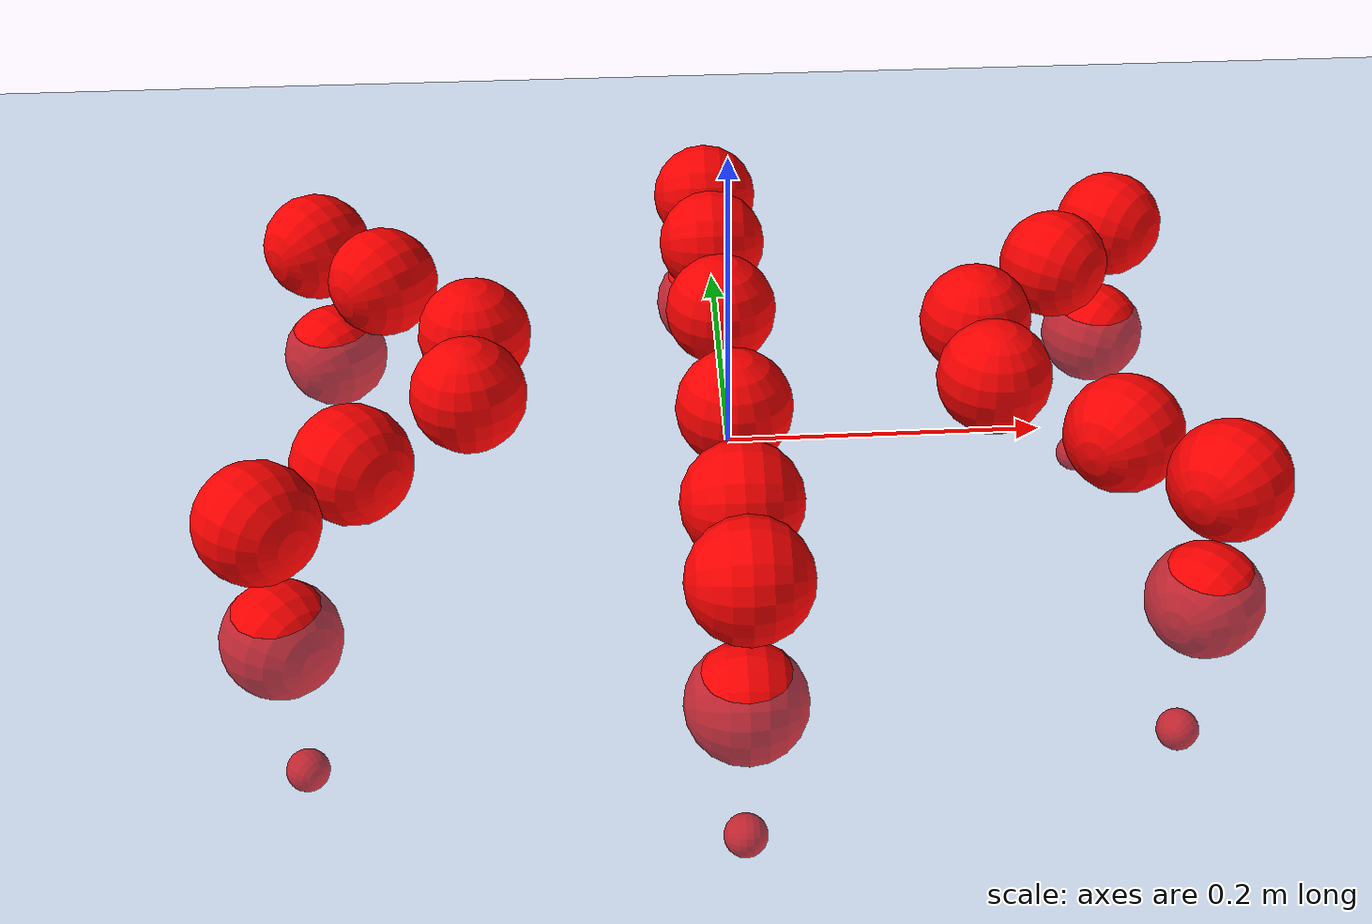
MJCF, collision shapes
<mujoco model="Golem">
  <compiler angle="radian" assetdir="assets" balanceinertia="true" inertiafromgeom="false"/>

  <option timestep="0.005" density="1.2" viscosity="2e-05"/>

  <size nkey="1"/>

  <visual>
    <quality shadowsize="8192"/>
    <map shadowclip="0.5"/>
  </visual>

  <default>
    <default class="/">
      <joint armature="0.01" damping="0.01" frictionloss="0.01"/>
      <geom contype="0" conaffinity="0" group="1" solref="-1000 -80"/>
      <site size="0.01 0.005 0.005" group="5"/>
      <general forcelimited="true" biastype="affine" gainprm="25" biasprm="0 -25 -0.5"/>
      <default class="visual">
        <geom type="mesh" group="2"/>
      </default>
      <default class="collision">
        <geom group="3"/>
      </default>
      <default class="foot">
        <geom size="0.01 0 0" condim="6" group="4" priority="1" solimp="0.015 1 0.01"/>
      </default>
      <default class="reward_collision_sphere">
        <geom group="5" rgba="1 0 0 1"/>
      </default>
    </default>
  </default>

  <asset>
    <texture type="skybox" colorspace="auto" name="//unnamed_texture_0" builtin="gradient" rgb1="0.95 0.95 0.95" rgb2="0.95 0.95 0.95" width="100" height="600"/>
    <texture type="2d" colorspace="auto" name="texplane" builtin="checker" rgb1="0.345 0.575 0.748" rgb2="0.345 0.575 0.748" markrgb="1 1 1" width="512" height="512"/>
    <material name="MatPlane" class="/" texture="texplane" texuniform="true" texrepeat="2 2" specular="0.9"/>
    <mesh name="body" class="/" file="body.stl" scale="0.001 0.001 0.001"/>
    <mesh name="coxa" class="/" file="coxa.stl" scale="0.001 0.001 0.001"/>
    <mesh name="femur" class="/" file="femur.stl" scale="0.001 0.001 0.001"/>
    <mesh name="tibia" class="/" file="tibia.stl" scale="0.001 0.001 0.001"/>
    <mesh name="tarsus" class="/" file="tarsus.stl" scale="0.001 0.001 0.001"/>
  </asset>

  <worldbody>
    <geom name="floor" class="/" size="100 100 0.125" type="plane" group="0" material="MatPlane"/>
    <light name="toplight_shadow" class="/" pos="0 0 5" dir="0.0990148 0.0990148 -0.990148" type="directional" ambient="0.04 0.04 0.04" diffuse="0.55 0.55 0.55" specular="0.12 0.12 0.12"/>
    <light name="toplight_fill" class="/" pos="0 0 5" dir="0.0990148 0.0990148 -0.990148" type="directional" castshadow="false" ambient="0.04 0.04 0.04" diffuse="0.3 0.3 0.3" specular="0.08 0.08 0.08"/>
    <body name="trunk" pos="0.00050124 5.03389e-05 -0.000407626" quat="1 -0.000220257 -1.36981e-05 0.00035819">
      <inertial pos="0.000267426 -0.000885082 -0.00363499" quat="0.999994 0.000852551 0.00208906 0.00256685" mass="2.54595" diaginertia="0.0105198 0.00102746 0.010247"/>
      <joint name="//unnamed_joint_0" type="free"/>
      <geom name="//unnamed_geom_1" class="/" pos="0 0 0.064284" quat="1 0 0 0" type="mesh" rgba="0.9 0.9 0.9 1" mesh="body"/>
      <site name="imu" class="/" pos="0.135248 0.000323609 0.0998515" size="0.00882467"/>
      <camera name="track" class="/" pos="0 -1.26573 0" quat="0.707107 0.707107 0 0" mode="trackcom"/>
      <camera name="ego_camera" class="/" pos="0.131313 0 0.100444" quat="-0.5 -0.5 0.5 0.5"/>
      <body name="coxa_RR" pos="-0.179653 -0.0525498 0.0641463" quat="0.38249 0.000364481 0.000406657 -0.923959">
        <inertial pos="-0.000832219 0.000829378 0.000604306" quat="1 -0.000235959 0.000103763 9.87044e-05" mass="0.136643" diaginertia="0.0105052 0.00102001 0.0101378"/>
        <joint name="coxa_joint_RR" class="/" pos="0 0 0" axis="0.00132443 -0.000120205 -0.999999" range="-3.12194 3.1483" armature="0.00887222" damping="0.00874142" frictionloss="0.00880752"/>
        <geom name="//unnamed_geom_2" class="/" type="mesh" rgba="0.2 0.2 0.2 1" mesh="coxa"/>
        <geom name="//unnamed_geom_3" class="reward_collision_sphere" size="0.0352987" pos="-0.030303 0 0"/>
        <body name="femur_RR" pos="0.0589197 0.000449738 -0.00137299" quat="0.500342 -0.499868 0.499938 0.499852">
          <inertial pos="6.35277e-05 0.000516712 0.00030894" quat="1 -3.71585e-06 -1.9158e-05 -9.77501e-05" mass="0.136927" diaginertia="0.0104841 0.00101089 0.0101033"/>
          <joint name="femur_joint_RR" class="/" pos="0 0 0" axis="0.000247908 -0.00139847 -0.999999" range="-3.14012 3.13452" armature="0.00920832" damping="0.00220428" frictionloss="0.00889524"/>
          <geom name="//unnamed_geom_4" class="/" type="mesh" rgba="0.9 0.9 0.9 1" mesh="femur"/>
          <geom name="//unnamed_geom_5" class="reward_collision_sphere" size="0.0352987"/>
          <body name="tibia_RR" pos="0.00087434 -0.0678779 0.00181412" quat="2.19425e-05 1 1.11857e-05 3.60574e-05">
            <inertial pos="0.000899591 0.000289267 -0.000397818" quat="1 -7.32054e-06 3.05281e-05 0.00011598" mass="0.139056" diaginertia="0.0106528 0.00102411 0.0103996"/>
            <joint name="tibia_joint_RR" class="/" pos="0 0 0" axis="-0.00112644 0.00113145 0.999999" range="-3.14006 3.1519" armature="0.00890294" damping="0" frictionloss="0.00899012"/>
            <geom name="//unnamed_geom_6" class="/" type="mesh" rgba="0.2 0.2 0.2 1" mesh="tibia"/>
            <geom name="//unnamed_geom_7" class="reward_collision_sphere" size="0.0352987"/>
            <body name="tarsus_RR" pos="0.0859909 -0.000699352 -0.000348943" quat="1 -1.87032e-05 -0.000154857 2.79695e-05">
              <inertial pos="0.0598435 -0.000252092 -0.00062024" quat="0.501916 0.499097 0.499574 0.499408" mass="0.135227" diaginertia="0.0105134 0.0009998 0.0100788"/>
              <joint name="tarsus_joint_RR" class="/" pos="0 0 0" axis="0.000931685 0.00311439 0.999995" range="-3.13772 3.13634" armature="0.00888771" damping="0.00287603" frictionloss="0.00860605"/>
              <geom name="//unnamed_geom_8" class="/" type="mesh" rgba="0.9 0.9 0.9 1" mesh="tarsus"/>
              <geom name="foot_1" class="foot" size="0.00856889" pos="0.113131 0 0" quat="0 -0.707107 0 0.707107"/>
              <geom name="//unnamed_geom_10" class="reward_collision_sphere" size="0.0352987"/>
              <geom name="//unnamed_geom_11" class="reward_collision_sphere" size="0.013237" pos="0.108586 0 0"/>
              <site name="foot_1" class="foot" pos="0.113131 0 0" quat="0 -0.707107 0 0.707107" size="0.00882467"/>
            </body>
          </body>
        </body>
      </body>
      <body name="coxa_RM" pos="-8.66584e-05 -0.0853353 0.0651914" quat="0.706888 9.89516e-05 7.08611e-05 -0.707326">
        <inertial pos="0.000121061 0.000934727 -0.000713743" quat="1 1.3611e-05 0.000182039 -0.000139302" mass="0.138065" diaginertia="0.0106595 0.00102179 0.0102245"/>
        <joint name="coxa_joint_RM" class="/" pos="0 0 0" axis="-0.00120025 0.00084949 -0.999999" range="-3.1362 3.12884" armature="0.00905656" damping="0.0105712" frictionloss="0.00844334"/>
        <geom name="//unnamed_geom_12" class="/" type="mesh" rgba="0.2 0.2 0.2 1" mesh="coxa"/>
        <geom name="//unnamed_geom_13" class="reward_collision_sphere" size="0.0352987" pos="-0.030303 0 0"/>
        <body name="femur_RM" pos="0.0584135 -0.00110286 -0.00138443" quat="0.500327 -0.499805 0.49964 0.500227">
          <inertial pos="-0.000359696 0.000626894 -0.000200477" quat="0.999996 0.000444673 0.000882002 -0.00267787" mass="0.137226" diaginertia="0.010515 0.00102387 0.0102485"/>
          <joint name="femur_joint_RM" class="/" pos="0 0 0" axis="0.00165579 0.000743682 -0.999998" range="-3.13576 3.13569" armature="0.00918006" damping="0.00999706" frictionloss="0.00896332"/>
          <geom name="//unnamed_geom_14" class="/" type="mesh" rgba="0.9 0.9 0.9 1" mesh="femur"/>
          <geom name="//unnamed_geom_15" class="reward_collision_sphere" size="0.0352987"/>
          <body name="tibia_RM" pos="-0.00071664 -0.0678901 -0.000609456" quat="-8.43447e-05 1 2.09021e-05 -2.82475e-05">
            <inertial pos="0.000415622 -0.000346661 -0.000123949" quat="0.999999 0.000439831 0.00134496 0.000240626" mass="0.137323" diaginertia="0.010471 0.00101668 0.0102745"/>
            <joint name="tibia_joint_RM" class="/" pos="0 0 0" axis="-0.000752522 0.000243963 1" range="-3.13383 3.14184" armature="0.00893862" damping="0.0050871" frictionloss="0.00897042"/>
            <geom name="//unnamed_geom_16" class="/" type="mesh" rgba="0.2 0.2 0.2 1" mesh="tibia"/>
            <geom name="//unnamed_geom_17" class="reward_collision_sphere" size="0.0352987"/>
            <body name="tarsus_RM" pos="0.0890775 1.37262e-05 0.00144783" quat="1 0.000301613 0.000118457 0.00013166">
              <inertial pos="0.0613494 0.000442151 0.00100626" quat="0.497905 0.501055 0.501648 0.499383" mass="0.137481" diaginertia="0.0104607 0.00101478 0.0101763"/>
              <joint name="tarsus_joint_RM" class="/" pos="0 0 0" axis="0.0017345 -0.00062505 0.999998" range="-3.14055 3.16265" armature="0.0088319" damping="0" frictionloss="0.00860901"/>
              <geom name="//unnamed_geom_18" class="/" type="mesh" rgba="0.9 0.9 0.9 1" mesh="tarsus"/>
              <geom name="foot_2" class="foot" size="0.00881589" pos="0.113131 0 0" quat="0 -0.707107 0 0.707107"/>
              <geom name="//unnamed_geom_20" class="reward_collision_sphere" size="0.0352987"/>
              <geom name="//unnamed_geom_21" class="reward_collision_sphere" size="0.013237" pos="0.108586 0 0"/>
              <site name="foot_2" class="foot" pos="0.113131 0 0" quat="0 -0.707107 0 0.707107" size="0.00882467"/>
            </body>
          </body>
        </body>
      </body>
      <body name="coxa_RF" pos="0.181182 -0.0528255 0.0639123" quat="0.923966 -0.00011411 -0.000107181 -0.382475">
        <inertial pos="0.000488196 -0.000119075 -0.000331066" quat="0.999998 -0.00029422 -0.00127646 0.00120965" mass="0.136695" diaginertia="0.0105161 0.00101548 0.0101981"/>
        <joint name="coxa_joint_RF" class="/" pos="0 0 0" axis="-0.00195938 0.00320765 -0.999993" range="-3.13702 3.12777" armature="0.00872232" damping="0" frictionloss="0.00908423"/>
        <geom name="//unnamed_geom_22" class="/" type="mesh" rgba="0.2 0.2 0.2 1" mesh="coxa"/>
        <geom name="//unnamed_geom_23" class="reward_collision_sphere" size="0.0352987" pos="-0.030303 0 0"/>
        <body name="femur_RF" pos="0.0599303 0.00138185 0.000226827" quat="0.500319 -0.499436 0.500176 0.500068">
          <inertial pos="0.000642795 -0.00040848 0.00090154" quat="0.99999 0.0014974 -0.00213104 0.00375545" mass="0.138936" diaginertia="0.0106143 0.00103011 0.0103501"/>
          <joint name="femur_joint_RF" class="/" pos="0 0 0" axis="8.73184e-07 3.1214e-06 -1" range="-3.15693 3.12013" armature="0.00863892" damping="0.00695034" frictionloss="0.00895263"/>
          <geom name="//unnamed_geom_24" class="/" type="mesh" rgba="0.9 0.9 0.9 1" mesh="femur"/>
          <geom name="//unnamed_geom_25" class="reward_collision_sphere" size="0.0352987"/>
          <body name="tibia_RF" pos="-0.000260431 -0.0686206 0.000421325" quat="-4.35048e-05 1 -0.000139367 7.79676e-06">
            <inertial pos="0.000192925 0.000527275 0.000105709" quat="0.999994 0.00150757 -0.00288172 -0.00104899" mass="0.134342" diaginertia="0.0103749 0.00100566 0.0101323"/>
            <joint name="tibia_joint_RF" class="/" pos="0 0 0" axis="-0.000327468 0.000190475 1" range="-3.14189 3.14168" armature="0.00876052" damping="0" frictionloss="0.00881588"/>
            <geom name="//unnamed_geom_26" class="/" type="mesh" rgba="0.2 0.2 0.2 1" mesh="tibia"/>
            <geom name="//unnamed_geom_27" class="reward_collision_sphere" size="0.0352987"/>
            <body name="tarsus_RF" pos="0.0894302 -0.00048563 -0.000425999" quat="1 -0.000361873 0.000147512 -0.000122224">
              <inertial pos="0.0607923 -0.000170427 0.000270694" quat="0.499772 0.500277 0.500049 0.499901" mass="0.136206" diaginertia="0.0103965 0.00101495 0.0101542"/>
              <joint name="tarsus_joint_RF" class="/" pos="0 0 0" axis="-4.84019e-05 0.00405157 0.999992" range="-3.13551 3.13001" armature="0.00903761" damping="0" frictionloss="0.00863508"/>
              <geom name="//unnamed_geom_28" class="/" type="mesh" rgba="0.9 0.9 0.9 1" mesh="tarsus"/>
              <geom name="foot_3" class="foot" size="0.00902285" pos="0.113131 0 0" quat="0 -0.707107 0 0.707107"/>
              <geom name="//unnamed_geom_30" class="reward_collision_sphere" size="0.0352987"/>
              <geom name="//unnamed_geom_31" class="reward_collision_sphere" size="0.013237" pos="0.108586 0 0"/>
              <site name="foot_3" class="foot" pos="0.113131 0 0" quat="0 -0.707107 0 0.707107" size="0.00882467"/>
            </body>
          </body>
        </body>
      </body>
      <body name="coxa_LR" pos="-0.179069 0.0544388 0.0657857" quat="0.382689 -0.00026287 -0.000162874 0.923877">
        <inertial pos="0.000370879 0.000217084 0.00101941" quat="0.999994 -0.00190446 -0.00146789 -0.00246357" mass="0.137051" diaginertia="0.0103978 0.000999814 0.0100658"/>
        <joint name="coxa_joint_LR" class="/" pos="0 0 0" axis="-0.00367282 -0.0036045 -0.999987" range="-3.14277 3.12918" armature="0.00865036" damping="0.00820448" frictionloss="0.00861315"/>
        <geom name="//unnamed_geom_32" class="/" type="mesh" rgba="0.2 0.2 0.2 1" mesh="coxa"/>
        <geom name="//unnamed_geom_33" class="reward_collision_sphere" size="0.0352987" pos="-0.030303 0 0"/>
        <body name="femur_LR" pos="0.061174 -0.00247566 0.000198551" quat="0.500092 -0.499883 0.500182 0.499842">
          <inertial pos="-1.88389e-05 0.000526083 -0.000956649" quat="0.99999 0.00237571 0.00316016 -0.00212453" mass="0.135492" diaginertia="0.0104826 0.00101282 0.0101973"/>
          <joint name="femur_joint_LR" class="/" pos="0 0 0" axis="-0.00105217 -0.00374492 0.999992" range="-3.1379 3.13806" armature="0.00843646" damping="0.00360674" frictionloss="0.00864943"/>
          <geom name="//unnamed_geom_34" class="/" type="mesh" rgba="0.9 0.9 0.9 1" mesh="femur"/>
          <geom name="//unnamed_geom_35" class="reward_collision_sphere" size="0.0352987"/>
          <body name="tibia_LR" pos="0.000785072 -0.0697025 -0.000772969" quat="-3.23971e-06 1 -1.903e-07 -7.80151e-06">
            <inertial pos="-0.000487318 0.000270637 0.000424331" quat="0.999998 0.000313564 -0.00150337 -0.000938856" mass="0.136007" diaginertia="0.0103535 0.00100176 0.010093"/>
            <joint name="tibia_joint_LR" class="/" pos="0 0 0" axis="0.00427922 -0.000312362 -0.999991" range="-3.14537 3.11466" armature="0.00931226" damping="0" frictionloss="0.00848553"/>
            <geom name="//unnamed_geom_36" class="/" type="mesh" rgba="0.2 0.2 0.2 1" mesh="tibia"/>
            <geom name="//unnamed_geom_37" class="reward_collision_sphere" size="0.0352987"/>
            <body name="tarsus_LR" pos="0.0886809 0.000559266 0.00184539" quat="1 -5.41258e-05 -2.89866e-05 -6.60537e-07">
              <inertial pos="0.061826 -0.000123862 -0.00116925" quat="0.499955 0.500222 0.49987 0.499953" mass="0.137672" diaginertia="0.0104476 0.00101219 0.0103167"/>
              <joint name="tarsus_joint_LR" class="/" pos="0 0 0" axis="-0.00109039 0.00147051 -0.999998" range="-3.15659 3.15714" armature="0.0090941" damping="0" frictionloss="0.00879134"/>
              <geom name="//unnamed_geom_38" class="/" type="mesh" rgba="0.9 0.9 0.9 1" mesh="tarsus"/>
              <geom name="foot_4" class="foot" size="0.00873777" pos="0.113131 0 0" quat="0.707107 0 -0.707107 0"/>
              <geom name="//unnamed_geom_40" class="reward_collision_sphere" size="0.0352987"/>
              <geom name="//unnamed_geom_41" class="reward_collision_sphere" size="0.013237" pos="0.108586 0 0"/>
              <site name="foot_4" class="foot" pos="0.113131 0 0" quat="0.707107 0 -0.707107 0" size="0.00882467"/>
            </body>
          </body>
        </body>
      </body>
      <body name="coxa_LM" pos="-0.00188483 0.0830374 0.0654771" quat="0.707211 -0.000244732 0.000124253 0.707003">
        <inertial pos="0.000197176 -0.0002952 0.00158847" quat="0.999991 -0.00168008 -0.00371417 0.0012333" mass="0.13524" diaginertia="0.0105164 0.00101068 0.0101344"/>
        <joint name="coxa_joint_LM" class="/" pos="0 0 0" axis="0.00108541 0.00105861 -0.999999" range="-3.13369 3.14543" armature="0.00845824" damping="0.0084165" frictionloss="0.00881069"/>
        <geom name="//unnamed_geom_42" class="/" type="mesh" rgba="0.2 0.2 0.2 1" mesh="coxa"/>
        <geom name="//unnamed_geom_43" class="reward_collision_sphere" size="0.0352987" pos="-0.030303 0 0"/>
        <body name="femur_LM" pos="0.0560433 0.00121463 -0.000954389" quat="0.499826 -0.500178 0.499952 0.500043">
          <inertial pos="-0.000924484 -0.00106822 0.000836591" quat="0.999999 -0.000524966 -0.00109623 0.000357613" mass="0.135462" diaginertia="0.0104749 0.000997996 0.0101997"/>
          <joint name="femur_joint_LM" class="/" pos="0 0 0" axis="-0.00361786 -0.00152574 0.999992" range="-3.1371 3.13935" armature="0.00861748" damping="0.00434453" frictionloss="0.00864286"/>
          <geom name="//unnamed_geom_44" class="/" type="mesh" rgba="0.9 0.9 0.9 1" mesh="femur"/>
          <geom name="//unnamed_geom_45" class="reward_collision_sphere" size="0.0352987"/>
          <body name="tibia_LM" pos="-0.000906015 -0.0650245 0.00178902" quat="1.18821e-05 1 -4.13343e-06 -3.00787e-06">
            <inertial pos="0.000281701 -0.00135714 -0.000606847" quat="0.999998 0.00180503 -0.000339576 0.000867862" mass="0.135518" diaginertia="0.0105117 0.00101293 0.0101885"/>
            <joint name="tibia_joint_LM" class="/" pos="0 0 0" axis="0.002192 -0.00162835 -0.999996" range="-3.13374 3.14137" armature="0.0089817" damping="0.0062237" frictionloss="0.00849187"/>
            <geom name="//unnamed_geom_46" class="/" type="mesh" rgba="0.2 0.2 0.2 1" mesh="tibia"/>
            <geom name="//unnamed_geom_47" class="reward_collision_sphere" size="0.0352987"/>
            <body name="tarsus_LM" pos="0.0879784 -8.67003e-06 -3.07749e-05" quat="1 8.81983e-05 8.29599e-05 6.50328e-05">
              <inertial pos="0.061363 -0.00093368 7.54762e-05" quat="0.500025 0.500019 0.500003 0.499952" mass="0.137075" diaginertia="0.0105512 0.00101868 0.010171"/>
              <joint name="tarsus_joint_LM" class="/" pos="0 0 0" axis="-0.0040396 -0.00321388 -0.999987" stiffness="0.000560073" range="-3.13335 3.14346" armature="0.00882315" damping="0.00189642" frictionloss="0.0087723"/>
              <geom name="//unnamed_geom_48" class="/" type="mesh" rgba="0.9 0.9 0.9 1" mesh="tarsus"/>
              <geom name="foot_5" class="foot" size="0.0088437" pos="0.113131 0 0" quat="0.707107 0 -0.707107 0"/>
              <geom name="//unnamed_geom_50" class="reward_collision_sphere" size="0.0352987"/>
              <geom name="//unnamed_geom_51" class="reward_collision_sphere" size="0.013237" pos="0.108586 0 0"/>
              <site name="foot_5" class="foot" pos="0.113131 0 0" quat="0.707107 0 -0.707107 0" size="0.00882467"/>
            </body>
          </body>
        </body>
      </body>
      <body name="coxa_LF" pos="0.180177 0.0527359 0.0651814" quat="0.923895 0.000118711 2.25678e-05 0.382645">
        <inertial pos="-0.000307465 0.000373688 -0.000281397" quat="0.999997 -0.00191354 0.00100581 -0.000663937" mass="0.136782" diaginertia="0.0106584 0.0010178 0.0102239"/>
        <joint name="coxa_joint_LF" class="/" pos="0 0 0" axis="0.00412436 -0.001682 -0.99999" range="-3.12994 3.13611" armature="0.0091874" damping="0.00118454" frictionloss="0.00887065"/>
        <geom name="//unnamed_geom_52" class="/" type="mesh" rgba="0.2 0.2 0.2 1" mesh="coxa"/>
        <geom name="//unnamed_geom_53" class="reward_collision_sphere" size="0.0352987" pos="-0.030303 0 0"/>
        <body name="femur_LF" pos="0.0595129 0.000651707 0.000480512" quat="0.500068 -0.500032 0.499986 0.499914">
          <inertial pos="0.000144516 -0.000846189 7.93034e-05" quat="0.999995 0.00112012 0.000319052 0.00292667" mass="0.13778" diaginertia="0.0105526 0.00101412 0.0102338"/>
          <joint name="femur_joint_LF" class="/" pos="0 0 0" axis="0.00162592 0.00353105 0.999992" range="-3.1435 3.1344" armature="0.00884159" damping="0.0012762" frictionloss="0.00884167"/>
          <geom name="//unnamed_geom_54" class="/" type="mesh" rgba="0.9 0.9 0.9 1" mesh="femur"/>
          <geom name="//unnamed_geom_55" class="reward_collision_sphere" size="0.0352987"/>
          <body name="tibia_LF" pos="-0.000157565 -0.0696831 0.00115405" quat="0.000250404 1 0.000190778 0.000164519">
            <inertial pos="0.000186146 0.000151562 -0.000313341" quat="0.999982 0.00496801 0.00292044 -0.00142768" mass="0.138689" diaginertia="0.0106258 0.00101928 0.0102661"/>
            <joint name="tibia_joint_LF" class="/" pos="0 0 0" axis="-0.00529723 0.00256111 -0.999983" range="-3.13986 3.12416" armature="0.00875532" damping="0" frictionloss="0.00860418"/>
            <geom name="//unnamed_geom_56" class="/" type="mesh" rgba="0.2 0.2 0.2 1" mesh="tibia"/>
            <geom name="//unnamed_geom_57" class="reward_collision_sphere" size="0.0352987"/>
            <body name="tarsus_LF" pos="0.0884023 -7.16434e-05 -0.000904268" quat="1 -7.52592e-05 4.12181e-05 -9.35824e-05">
              <inertial pos="0.0615782 0.00107977 0.0002654" quat="0.499412 0.501235 0.499792 0.499559" mass="0.136232" diaginertia="0.0104226 0.00100556 0.0101662"/>
              <joint name="tarsus_joint_LF" class="/" pos="0 0 0" axis="0.00324639 0.00199082 -0.999993" range="-3.14254 3.12022" armature="0.00911199" damping="0.00803421" frictionloss="0.00870921"/>
              <geom name="//unnamed_geom_58" class="/" type="mesh" rgba="0.9 0.9 0.9 1" mesh="tarsus"/>
              <geom name="foot_6" class="foot" size="0.00855622" pos="0.113131 0 0" quat="0.707107 0 -0.707107 0"/>
              <geom name="//unnamed_geom_60" class="reward_collision_sphere" size="0.0352987"/>
              <geom name="//unnamed_geom_61" class="reward_collision_sphere" size="0.013237" pos="0.108586 0 0"/>
              <site name="foot_6" class="foot" pos="0.113131 0 0" quat="0.707107 0 -0.707107 0" size="0.00882467"/>
            </body>
          </body>
        </body>
      </body>
    </body>
  </worldbody>

  <contact>
    <pair class="/" geom1="floor" geom2="foot_1" name="//unnamed_contact_0"/>
    <pair class="/" geom1="floor" geom2="foot_2" name="//unnamed_contact_1"/>
    <pair class="/" geom1="floor" geom2="foot_3" name="//unnamed_contact_2"/>
    <pair class="/" geom1="floor" geom2="foot_4" name="//unnamed_contact_3"/>
    <pair class="/" geom1="floor" geom2="foot_5" name="//unnamed_contact_4"/>
    <pair class="/" geom1="floor" geom2="foot_6" name="//unnamed_contact_5"/>
  </contact>

  <actuator>
    <general name="coxa_joint_RR" class="/" joint="coxa_joint_RR" forcerange="-6.48619 6.48619" gainprm="21.257" biasprm="0 -21.257 -0.453592"/>
    <general name="femur_joint_RR" class="/" joint="femur_joint_RR" forcerange="-6.2344 6.2344" gainprm="21.257" biasprm="0 -21.257 -0.453592"/>
    <general name="tibia_joint_RR" class="/" joint="tibia_joint_RR" forcerange="-6.44779 6.44779" gainprm="21.257" biasprm="0 -21.257 -0.453592"/>
    <general name="tarsus_joint_RR" class="/" joint="tarsus_joint_RR" forcerange="-6.30347 6.30347" gainprm="21.257" biasprm="0 -21.257 -0.453592"/>
    <general name="coxa_joint_RM" class="/" joint="coxa_joint_RM" forcerange="-6.73821 6.73821" gainprm="21.257" biasprm="0 -21.257 -0.453592"/>
    <general name="femur_joint_RM" class="/" joint="femur_joint_RM" forcerange="-6.51073 6.51073" gainprm="21.257" biasprm="0 -21.257 -0.453592"/>
    <general name="tibia_joint_RM" class="/" joint="tibia_joint_RM" forcerange="-6.28588 6.28588" gainprm="21.257" biasprm="0 -21.257 -0.453592"/>
    <general name="tarsus_joint_RM" class="/" joint="tarsus_joint_RM" forcerange="-6.44214 6.44214" gainprm="21.257" biasprm="0 -21.257 -0.453592"/>
    <general name="coxa_joint_RF" class="/" joint="coxa_joint_RF" forcerange="-6.37657 6.37657" gainprm="21.257" biasprm="0 -21.257 -0.453592"/>
    <general name="femur_joint_RF" class="/" joint="femur_joint_RF" forcerange="-6.45827 6.45827" gainprm="21.257" biasprm="0 -21.257 -0.453592"/>
    <general name="tibia_joint_RF" class="/" joint="tibia_joint_RF" forcerange="-6.45988 6.45988" gainprm="21.257" biasprm="0 -21.257 -0.453592"/>
    <general name="tarsus_joint_RF" class="/" joint="tarsus_joint_RF" forcerange="-6.44915 6.44915" gainprm="21.257" biasprm="0 -21.257 -0.453592"/>
    <general name="coxa_joint_LR" class="/" joint="coxa_joint_LR" forcerange="-6.53891 6.53891" gainprm="21.257" biasprm="0 -21.257 -0.453592"/>
    <general name="femur_joint_LR" class="/" joint="femur_joint_LR" forcerange="-6.4566 6.4566" gainprm="21.257" biasprm="0 -21.257 -0.453592"/>
    <general name="tibia_joint_LR" class="/" joint="tibia_joint_LR" forcerange="-6.29963 6.29963" gainprm="21.257" biasprm="0 -21.257 -0.453592"/>
    <general name="tarsus_joint_LR" class="/" joint="tarsus_joint_LR" forcerange="-6.59895 6.59895" gainprm="21.257" biasprm="0 -21.257 -0.453592"/>
    <general name="coxa_joint_LM" class="/" joint="coxa_joint_LM" forcerange="-6.469 6.469" gainprm="21.257" biasprm="0 -21.257 -0.453592"/>
    <general name="femur_joint_LM" class="/" joint="femur_joint_LM" forcerange="-6.40929 6.40929" gainprm="21.257" biasprm="0 -21.257 -0.453592"/>
    <general name="tibia_joint_LM" class="/" joint="tibia_joint_LM" forcerange="-6.49974 6.49974" gainprm="21.257" biasprm="0 -21.257 -0.453592"/>
    <general name="tarsus_joint_LM" class="/" joint="tarsus_joint_LM" forcerange="-6.70967 6.70967" gainprm="21.257" biasprm="0 -21.257 -0.453592"/>
    <general name="coxa_joint_LF" class="/" joint="coxa_joint_LF" forcerange="-6.60037 6.60037" gainprm="21.257" biasprm="0 -21.257 -0.453592"/>
    <general name="femur_joint_LF" class="/" joint="femur_joint_LF" forcerange="-6.61719 6.61719" gainprm="21.257" biasprm="0 -21.257 -0.453592"/>
    <general name="tibia_joint_LF" class="/" joint="tibia_joint_LF" forcerange="-6.49569 6.49569" gainprm="21.257" biasprm="0 -21.257 -0.453592"/>
    <general name="tarsus_joint_LF" class="/" joint="tarsus_joint_LF" forcerange="-6.64335 6.64335" gainprm="21.257" biasprm="0 -21.257 -0.453592"/>
  </actuator>

  <sensor>
    <gyro site="imu" name="imu_angular_velocity"/>
    <velocimeter site="imu" name="imu_linear_velocity"/>
    <framelinvel objtype="site" objname="foot_1" name="foot_1_global_linear_velocity"/>
    <framelinvel objtype="site" objname="foot_2" name="foot_2_global_linear_velocity"/>
    <framelinvel objtype="site" objname="foot_3" name="foot_3_global_linear_velocity"/>
    <framelinvel objtype="site" objname="foot_4" name="foot_4_global_linear_velocity"/>
    <framelinvel objtype="site" objname="foot_5" name="foot_5_global_linear_velocity"/>
    <framelinvel objtype="site" objname="foot_6" name="foot_6_global_linear_velocity"/>
  </sensor>

  <keyframe>
    <key name="home" qpos="0 0 0.1457 1 0 0 0 0 0 0 0 0 0 0 0 0 0 0 0 0 0 0 0 0 0 0 0 0 0 0 0"/>
  </keyframe>
</mujoco>
